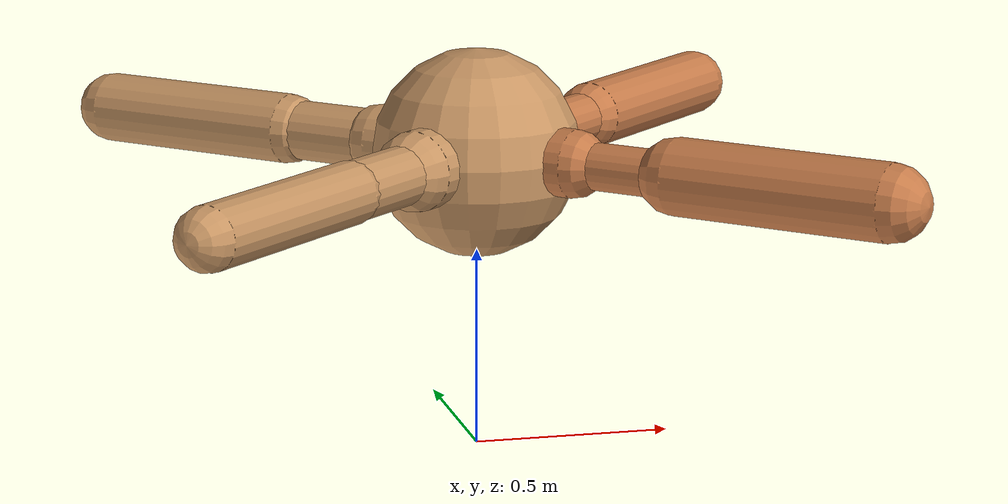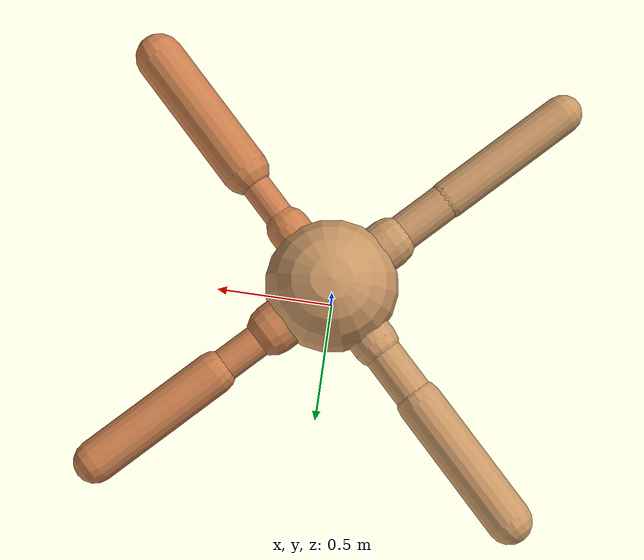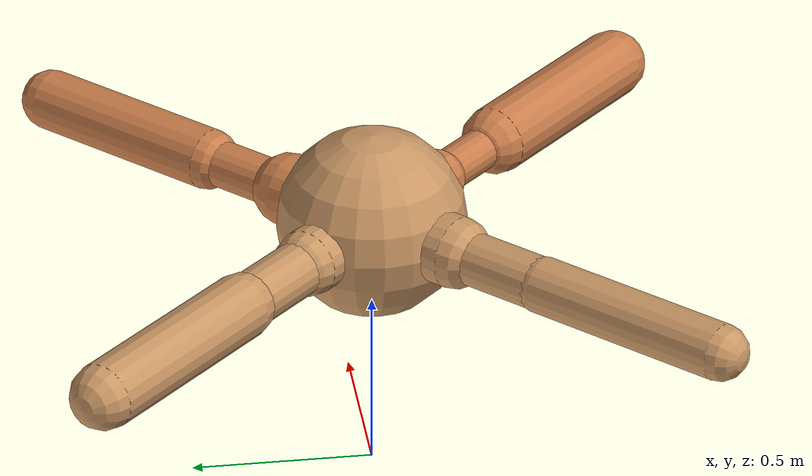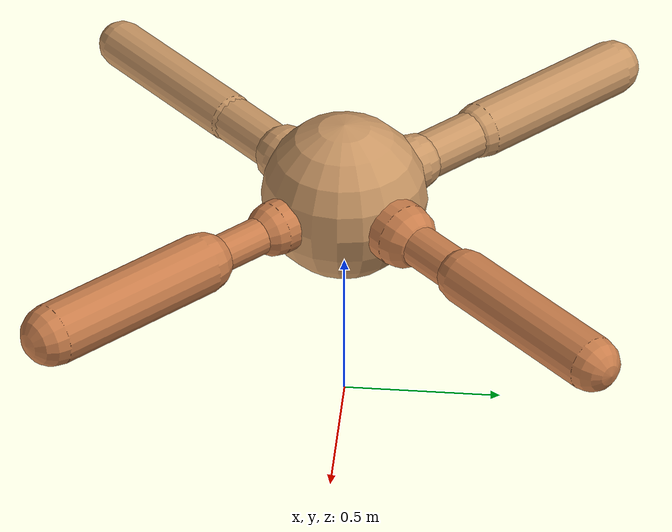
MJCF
<?xml version="1.0" encoding="utf-8"?>
<mujoco model="ant">
	<compiler angle="degree" coordinate="local" inertiafromgeom="true"></compiler>
	<option integrator="RK4" timestep="0.01"></option>
	<custom>
		<numeric data="0.0 0.0 0.55 1.0 0.0 0.0 0.0 0.0 1.0 0.0 -1.0 0.0 -1.0 0.0 1.0" name="init_qpos"></numeric>
	</custom>
	<default>
		<joint armature="1" damping="0.8733777222720543" limited="true"></joint>
		<geom conaffinity="0" condim="3" density="5.0" friction="1.4769963171932536 0.1129884036649864 0.12809038006415346" margin="0.01" rgba="0.8 0.6 0.4 1"></geom>
	</default>
	<worldbody>
		<body name="torso" pos="0 0 0.75">
			<geom name="torso_geom" pos="0 0 0" size="0.26079301873689203" type="sphere"></geom>
			<body name="front_left_leg" pos="0 0 0">
				<geom fromto="0.0 0.0 0.0 0.2 0.2 0.0" name="aux_1_geom" size="0.10202863686160084" type="capsule" rgba=".8 .5 .3 1"></geom>
				<body name="aux_1" pos="0.2 0.2 0">
					<joint axis="0 0 1" name="hip_1" pos="0.0 0.0 0.0" range="-40 40" type="hinge"></joint>
					<geom fromto="0.0 0.0 0.0 0.2 0.2 0.0" name="left_leg_geom" size="0.06574290202191528" type="capsule" rgba=".8 .5 .3 1"></geom>
					<body pos="0.2 0.2 0" name="front_left_foot">
						<joint axis="-1 1 0" name="ankle_1" pos="0.0 0.0 0.0" range="30 100" type="hinge"></joint>
						<geom fromto="0.0 0.0 0.0 0.4 0.4 0.0" name="left_ankle_geom" size="0.08552563326886681" type="capsule" rgba=".8 .5 .3 1"></geom>
					</body>
				</body>
			</body>
			<body name="front_right_leg" pos="0 0 0">
				<geom fromto="0.0 0.0 0.0 -0.2 0.2 0.0" name="aux_2_geom" size="0.09193022236587049" type="capsule"></geom>
				<body name="aux_2" pos="-0.2 0.2 0">
					<joint axis="0 0 1" name="hip_2" pos="0.0 0.0 0.0" range="-40 40" type="hinge"></joint>
					<geom fromto="0.0 0.0 0.0 -0.2 0.2 0.0" name="right_leg_geom" size="0.07596185197445823" type="capsule"></geom>
					<body pos="-0.2 0.2 0" name="front_right_foot">
						<joint axis="1 1 0" name="ankle_2" pos="0.0 0.0 0.0" range="-100 -30" type="hinge"></joint>
						<geom fromto="0.0 0.0 0.0 -0.4 0.4 0.0" name="right_ankle_geom" size="0.08970549879571692" type="capsule"></geom>
					</body>
				</body>
			</body>
			<body name="left_back_leg" pos="0 0 0">
				<geom fromto="0.0 0.0 0.0 -0.2 -0.2 0.0" name="aux_3_geom" size="0.09955137344068975" type="capsule"></geom>
				<body name="aux_3" pos="-0.2 -0.2 0">
					<joint axis="0 0 1" name="hip_3" pos="0.0 0.0 0.0" range="-40 40" type="hinge"></joint>
					<geom fromto="0.0 0.0 0.0 -0.2 -0.2 0.0" name="back_leg_geom" size="0.07387713557399132" type="capsule"></geom>
					<body pos="-0.2 -0.2 0" name="left_back_foot">
						<joint axis="-1 1 0" name="ankle_3" pos="0.0 0.0 0.0" range="-100 -30" type="hinge"></joint>
						<geom fromto="0.0 0.0 0.0 -0.4 -0.4 0.0" name="third_ankle_geom" size="0.07752883437646796" type="capsule"></geom>
					</body>
				</body>
			</body>
			<body name="right_back_leg" pos="0 0 0">
				<geom fromto="0.0 0.0 0.0 0.2 -0.2 0.0" name="aux_4_geom" size="0.0855255153697299" type="capsule" rgba=".8 .5 .3 1"></geom>
				<body name="aux_4" pos="0.2 -0.2 0">
					<joint axis="0 0 1" name="hip_4" pos="0.0 0.0 0.0" range="-40 40" type="hinge"></joint>
					<geom fromto="0.0 0.0 0.0 0.2 -0.2 0.0" name="rightback_leg_geom" size="0.05898263195214803" type="capsule" rgba=".8 .5 .3 1"></geom>
					<body pos="0.2 -0.2 0" name="right_back_foot">
						<joint axis="1 1 0" name="ankle_4" pos="0.0 0.0 0.0" range="30 100" type="hinge"></joint>
						<geom fromto="0.0 0.0 0.0 0.4 -0.4 0.0" name="fourth_ankle_geom" size="0.09583344420411645" type="capsule" rgba=".8 .5 .3 1"></geom>
					</body>
				</body>
			</body>
		</body>
	</worldbody>
	<actuator>
		<motor ctrllimited="true" ctrlrange="-1.0 1.0" joint="hip_4" gear="150"></motor>
		<motor ctrllimited="true" ctrlrange="-1.0 1.0" joint="ankle_4" gear="150"></motor>
		<motor ctrllimited="true" ctrlrange="-1.0 1.0" joint="hip_1" gear="150"></motor>
		<motor ctrllimited="true" ctrlrange="-1.0 1.0" joint="ankle_1" gear="150"></motor>
		<motor ctrllimited="true" ctrlrange="-1.0 1.0" joint="hip_2" gear="150"></motor>
		<motor ctrllimited="true" ctrlrange="-1.0 1.0" joint="ankle_2" gear="150"></motor>
		<motor ctrllimited="true" ctrlrange="-1.0 1.0" joint="hip_3" gear="150"></motor>
		<motor ctrllimited="true" ctrlrange="-1.0 1.0" joint="ankle_3" gear="150"></motor>
	</actuator>
</mujoco>
